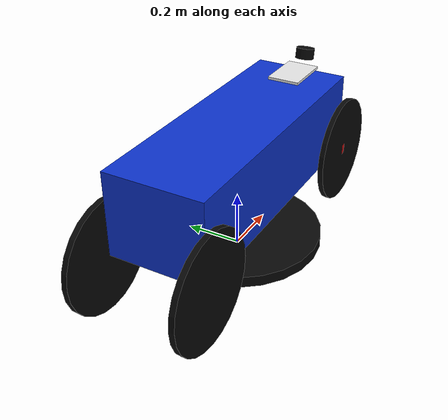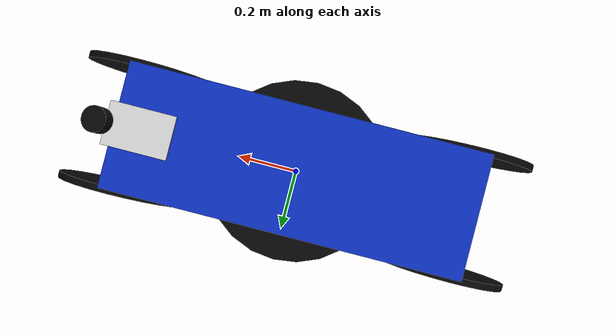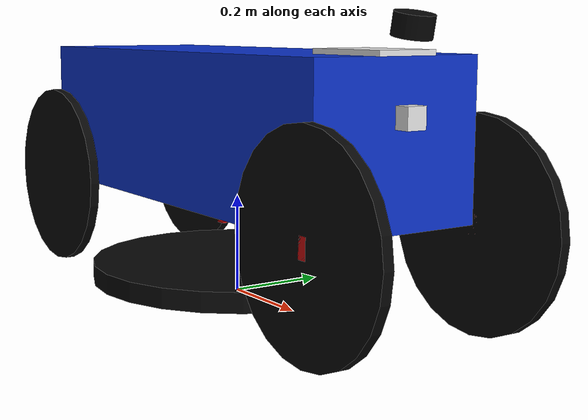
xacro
<?xml version="1.0"?>
<robot name="smartcar" xmlns:xacro="http://www.ros.org/wiki/xacro">
  <xacro:property name="M_PI" value="3.141592653589793"/>
  <!-- Physical dimensions of the four-wheel-drive mower chassis (metres). -->
  <xacro:property name="wheel_radius" value="0.200"/>
  <xacro:property name="wheel_width" value="0.020"/>
  <xacro:property name="wheel_base" value="1.000"/>
  <!-- Rear track width has not been provided; use the measured front track. -->
  <xacro:property name="wheel_separation" value="0.370"/>
  <xacro:property name="body_length" value="1.000"/>
  <xacro:property name="body_width" value="0.350"/>
  <xacro:property name="body_height" value="0.300"/>
  <!-- The blue shell spans z=0.200..0.500 m; wheels remain exposed. -->

  <material name="smartcar_blue">
    <color rgba="0.05 0.20 0.80 1"/>
  </material>
  <material name="smartcar_black">
    <color rgba="0.03 0.03 0.03 1"/>
  </material>
  <material name="smartcar_red">
    <color rgba="0.80 0.05 0.05 1"/>
  </material>
  <material name="smartcar_white">
    <color rgba="0.90 0.90 0.90 1"/>
  </material>

  <xacro:macro name="box_inertia" params="mass x y z">
    <inertial>
      <mass value="${mass}"/>
      <inertia
        ixx="${mass * (y * y + z * z) / 12.0}" ixy="0" ixz="0"
        iyy="${mass * (x * x + z * z) / 12.0}" iyz="0"
        izz="${mass * (x * x + y * y) / 12.0}"/>
    </inertial>
  </xacro:macro>

  <xacro:macro name="wheel_link" params="name">
    <link name="${name}">
      <inertial>
        <origin xyz="0 0 0" rpy="${M_PI / 2.0} 0 0"/>
        <mass value="0.10"/>
        <inertia
          ixx="0.00003646" ixy="0" ixz="0"
          iyy="0.00003646" iyz="0"
          izz="0.00003125"/>
      </inertial>
      <visual>
        <origin xyz="0 0 0" rpy="${M_PI / 2.0} 0 0"/>
        <geometry>
          <cylinder radius="${wheel_radius}" length="${wheel_width}"/>
        </geometry>
        <material name="smartcar_black"/>
      </visual>
      <collision>
        <origin xyz="0 0 0" rpy="${M_PI / 2.0} 0 0"/>
        <geometry>
          <cylinder radius="${wheel_radius}" length="${wheel_width}"/>
        </geometry>
      </collision>
    </link>
  </xacro:macro>

  <link name="base_footprint"/>

  <link name="base_link">
    <inertial>
      <origin xyz="0 0 0.295" rpy="0 0 0"/>
      <mass value="1.40"/>
      <inertia ixx="0.02479167" ixy="0" ixz="0"
        iyy="0.12716667" iyz="0" izz="0.13095833"/>
    </inertial>
    <visual>
      <origin xyz="0 0 0.295" rpy="0 0 0"/>
      <geometry>
        <box size="1.000 0.350 0.300"/>
      </geometry>
      <material name="smartcar_blue"/>
    </visual>
    <collision>
      <origin xyz="0 0 0.295" rpy="0 0 0"/>
      <geometry>
        <box size="1.000 0.350 0.300"/>
      </geometry>
    </collision>
  </link>

  <!-- 600 mm cutter disc fitted exactly between the two wheel axles. -->
  <link name="cutter_deck_link">
    <inertial>
      <mass value="2.00"/>
      <inertia ixx="0.04526667" ixy="0" ixz="0"
        iyy="0.04526667" iyz="0" izz="0.09000000"/>
    </inertial>
    <visual>
      <geometry><cylinder radius="0.300" length="0.040"/></geometry>
      <material name="smartcar_black"/>
    </visual>
    <collision>
      <geometry><cylinder radius="0.300" length="0.040"/></geometry>
    </collision>
  </link>
  <joint name="cutter_deck_joint" type="fixed">
    <parent link="base_link"/>
    <child link="cutter_deck_link"/>
    <origin xyz="0 0 -0.005" rpy="0 0 0"/>
  </joint>

  <joint name="base_footprint_joint" type="fixed">
    <parent link="base_footprint"/>
    <child link="base_link"/>
    <origin xyz="0 0 0.055" rpy="0 0 0"/>
  </joint>

  <xacro:wheel_link name="rear_left_wheel_link"/>
  <joint name="rear_left_wheel_joint" type="continuous">
    <parent link="base_link"/>
    <child link="rear_left_wheel_link"/>
    <origin xyz="-0.500 0.185 0.145" rpy="0 0 0"/>
    <axis xyz="0 1 0"/>
    <dynamics damping="0.02" friction="0.01"/>
  </joint>

  <xacro:wheel_link name="rear_right_wheel_link"/>
  <joint name="rear_right_wheel_joint" type="continuous">
    <parent link="base_link"/>
    <child link="rear_right_wheel_link"/>
    <origin xyz="-0.500 -0.185 0.145" rpy="0 0 0"/>
    <axis xyz="0 1 0"/>
    <dynamics damping="0.02" friction="0.01"/>
  </joint>

  <link name="front_left_steering_link">
    <xacro:box_inertia mass="0.03" x="0.02" y="0.02" z="0.04"/>
    <visual>
      <geometry><box size="0.02 0.02 0.04"/></geometry>
      <material name="smartcar_red"/>
    </visual>
    <collision>
      <geometry><box size="0.02 0.02 0.04"/></geometry>
    </collision>
  </link>
  <!-- Four-wheel skid-steer chassis: keep the front wheel carriers aligned. -->
  <joint name="front_left_steering_joint" type="fixed">
    <parent link="base_link"/>
    <child link="front_left_steering_link"/>
    <origin xyz="0.500 0.185 0.145" rpy="0 0 0"/>
  </joint>

  <xacro:wheel_link name="front_left_wheel_link"/>
  <joint name="front_left_wheel_joint" type="continuous">
    <parent link="front_left_steering_link"/>
    <child link="front_left_wheel_link"/>
    <axis xyz="0 1 0"/>
    <dynamics damping="0.02" friction="0.01"/>
  </joint>

  <link name="front_right_steering_link">
    <xacro:box_inertia mass="0.03" x="0.02" y="0.02" z="0.04"/>
    <visual>
      <geometry><box size="0.02 0.02 0.04"/></geometry>
      <material name="smartcar_red"/>
    </visual>
    <collision>
      <geometry><box size="0.02 0.02 0.04"/></geometry>
    </collision>
  </link>
  <joint name="front_right_steering_joint" type="fixed">
    <parent link="base_link"/>
    <child link="front_right_steering_link"/>
    <origin xyz="0.500 -0.185 0.145" rpy="0 0 0"/>
  </joint>

  <xacro:wheel_link name="front_right_wheel_link"/>
  <joint name="front_right_wheel_joint" type="continuous">
    <parent link="front_right_steering_link"/>
    <child link="front_right_wheel_link"/>
    <axis xyz="0 1 0"/>
    <dynamics damping="0.02" friction="0.01"/>
  </joint>

  <link name="sensor_deck_link">
    <xacro:box_inertia mass="0.20" x="0.18" y="0.12" z="0.01"/>
    <visual>
      <geometry><box size="0.18 0.12 0.01"/></geometry>
      <material name="smartcar_white"/>
    </visual>
    <collision>
      <geometry><box size="0.18 0.12 0.01"/></geometry>
    </collision>
  </link>
  <joint name="sensor_deck_joint" type="fixed">
    <parent link="base_link"/>
    <child link="sensor_deck_link"/>
    <origin xyz="0.430 0 0.450" rpy="0 0 0"/>
  </joint>

  <link name="lidar_link">
    <inertial>
      <mass value="0.10"/>
      <inertia
        ixx="0.00008333" ixy="0" ixz="0"
        iyy="0.00008333" iyz="0"
        izz="0.00012500"/>
    </inertial>
    <visual>
      <geometry><cylinder radius="0.035" length="0.04"/></geometry>
      <material name="smartcar_black"/>
    </visual>
    <collision>
      <geometry><cylinder radius="0.035" length="0.04"/></geometry>
    </collision>
  </link>
  <joint name="lidar_joint" type="fixed">
    <parent link="base_link"/>
    <child link="lidar_link"/>
    <origin xyz="0.530 0 0.495" rpy="0 0.191986 0"/>
  </joint>

  <link name="camera_link">
    <xacro:box_inertia mass="0.08" x="0.03" y="0.04" z="0.04"/>
    <visual>
      <geometry><box size="0.03 0.04 0.04"/></geometry>
      <material name="smartcar_white"/>
    </visual>
    <collision>
      <geometry><box size="0.03 0.04 0.04"/></geometry>
    </collision>
  </link>
  <joint name="camera_joint" type="fixed">
    <parent link="base_link"/>
    <child link="camera_link"/>
    <origin xyz="0.530 0 0.345" rpy="0 0 0"/>
  </joint>

  <link name="imu_link">
    <xacro:box_inertia mass="0.04" x="0.02" y="0.012" z="0.003"/>
    <visual>
      <geometry><box size="0.02 0.012 0.003"/></geometry>
      <material name="smartcar_red"/>
    </visual>
    <collision>
      <geometry><box size="0.02 0.012 0.003"/></geometry>
    </collision>
  </link>
  <joint name="imu_joint" type="fixed">
    <parent link="base_link"/>
    <child link="imu_link"/>
    <origin xyz="-0.06 0 0.08" rpy="0 0 0"/>
  </joint>

  <gazebo reference="base_link"><material>Gazebo/Blue</material></gazebo>
  <gazebo reference="front_left_steering_link"><material>Gazebo/Red</material></gazebo>
  <gazebo reference="front_right_steering_link"><material>Gazebo/Red</material></gazebo>
  <!-- Skid-steer tyre: high rolling traction and low lateral resistance. -->
  <gazebo reference="rear_left_wheel_link">
    <material>Gazebo/Black</material>
    <mu1>1.0</mu1>
    <mu2>0.08</mu2>
    <fdir1>1 0 0</fdir1>
  </gazebo>
  <gazebo reference="rear_right_wheel_link">
    <material>Gazebo/Black</material>
    <mu1>1.0</mu1>
    <mu2>0.08</mu2>
    <fdir1>1 0 0</fdir1>
  </gazebo>
  <gazebo reference="front_left_wheel_link">
    <material>Gazebo/Black</material>
    <mu1>1.0</mu1>
    <mu2>0.08</mu2>
    <fdir1>1 0 0</fdir1>
  </gazebo>
  <gazebo reference="front_right_wheel_link">
    <material>Gazebo/Black</material>
    <mu1>1.0</mu1>
    <mu2>0.08</mu2>
    <fdir1>1 0 0</fdir1>
  </gazebo>
  <gazebo reference="lidar_link"><material>Gazebo/Black</material></gazebo>

  <gazebo reference="lidar_link">
    <sensor name="lidar_sensor" type="gpu_lidar">
      <always_on>true</always_on>
      <update_rate>20</update_rate>
      <visualize>false</visualize>
      <topic>/smartcar/scan</topic>
      <lidar>
        <scan>
          <horizontal>
            <samples>720</samples>
            <resolution>1</resolution>
            <min_angle>-${M_PI}</min_angle>
            <max_angle>${M_PI}</max_angle>
          </horizontal>
          <vertical>
            <samples>4</samples>
            <resolution>1</resolution>
            <min_angle>-${10.0 * M_PI / 180.0}</min_angle>
            <max_angle>${10.0 * M_PI / 180.0}</max_angle>
          </vertical>
        </scan>
        <range>
          <min>0.10</min>
          <max>30.0</max>
          <resolution>0.01</resolution>
        </range>
        <noise>
          <type>gaussian</type>
          <mean>0.0</mean>
          <stddev>0.01</stddev>
        </noise>
      </lidar>
    </sensor>
  </gazebo>
  <gazebo reference="lidar_joint">
    <preserveFixedJoint>true</preserveFixedJoint>
  </gazebo>

  <gazebo reference="camera_link">
    <material>Gazebo/White</material>
    <sensor name="front_camera" type="camera">
      <always_on>true</always_on>
      <update_rate>20</update_rate>
      <topic>/smartcar/camera/image</topic>
      <camera>
        <horizontal_fov>1.3962634</horizontal_fov>
        <image>
          <width>640</width>
          <height>480</height>
          <format>R8G8B8</format>
        </image>
        <clip>
          <near>0.05</near>
          <far>30.0</far>
        </clip>
      </camera>
    </sensor>
  </gazebo>
  <gazebo reference="camera_joint">
    <preserveFixedJoint>true</preserveFixedJoint>
  </gazebo>

  <gazebo reference="imu_link">
    <sensor name="imu_sensor" type="imu">
      <always_on>true</always_on>
      <update_rate>100</update_rate>
      <topic>/smartcar/imu</topic>
    </sensor>
  </gazebo>
  <gazebo reference="imu_joint">
    <preserveFixedJoint>true</preserveFixedJoint>
  </gazebo>

  <gazebo>
    <plugin
      filename="gz-sim-diff-drive-system"
      name="gz::sim::systems::DiffDrive">
      <!-- Each side has two driven wheels, enabling skid-steer turns. -->
      <left_joint>rear_left_wheel_joint</left_joint>
      <left_joint>front_left_wheel_joint</left_joint>
      <right_joint>rear_right_wheel_joint</right_joint>
      <right_joint>front_right_wheel_joint</right_joint>
      <wheel_separation>${wheel_separation}</wheel_separation>
      <wheel_radius>${wheel_radius}</wheel_radius>
      <topic>/smartcar/cmd_vel</topic>
      <odom_topic>/smartcar/odom</odom_topic>
      <tf_topic>/smartcar/tf</tf_topic>
      <frame_id>odom</frame_id>
      <child_frame_id>base_footprint</child_frame_id>
      <odom_publish_frequency>30</odom_publish_frequency>
      <min_velocity>-0.8</min_velocity>
      <max_velocity>0.8</max_velocity>
      <min_acceleration>-1.0</min_acceleration>
      <max_acceleration>1.0</max_acceleration>
    </plugin>
    <plugin
      filename="gz-sim-joint-state-publisher-system"
      name="gz::sim::systems::JointStatePublisher">
      <topic>/smartcar/joint_states</topic>
      <joint_name>rear_left_wheel_joint</joint_name>
      <joint_name>rear_right_wheel_joint</joint_name>
      <joint_name>front_left_wheel_joint</joint_name>
      <joint_name>front_right_wheel_joint</joint_name>
    </plugin>
  </gazebo>
</robot>
